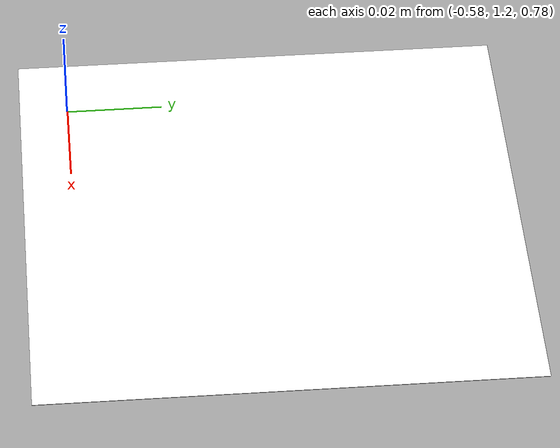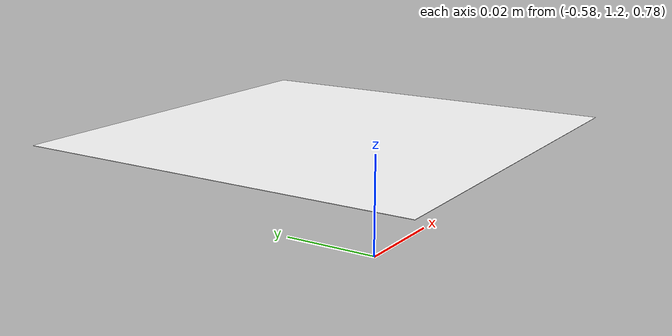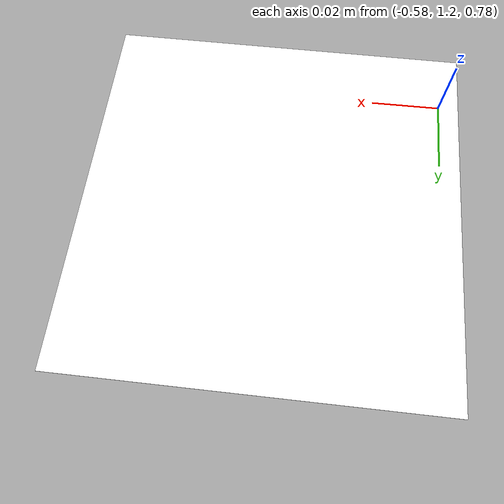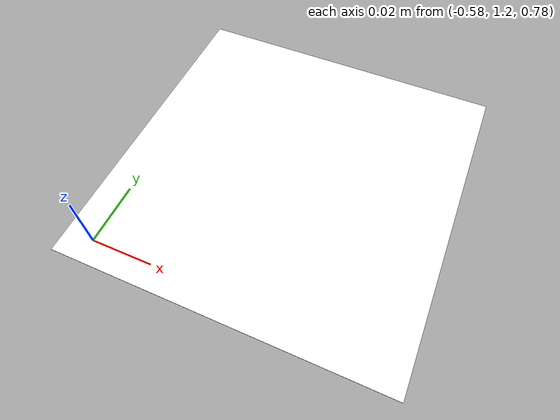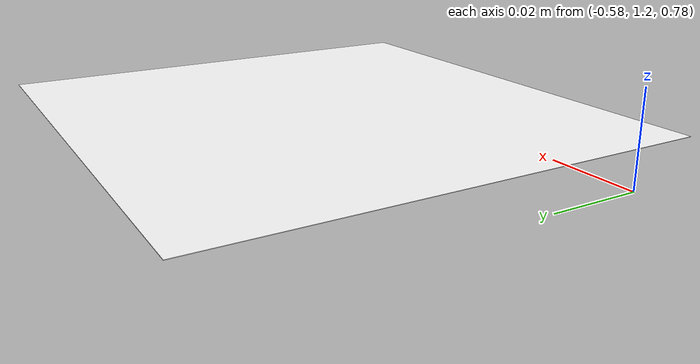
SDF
<?xml version="1.0"?>
<!-- AprilTag 36h11 ID 11 — Modelo para Gazebo Sim -->
<sdf version="1.9">
  <model name="apriltag_11">
    <!-- AprilTag 36h11 ID 11 — Posición calibrada: x=-0.533, y=1.240, z=0.280 m -->
    <pose>-0.533 1.240 0.79 0 0 0</pose>
    <static>true</static>
    <link name="tag_link">
      <visual name="tag_visual">
        <geometry>
          <plane>
            <normal>0 0 1</normal>
            <size>0.10 0.10</size>
          </plane>
        </geometry>
        <material>
          <diffuse>1 1 1 1</diffuse>
          <specular>0 0 0 1</specular>
          <pbr>
            <metal>
              <albedo_map>model://apriltags/textures/tag36_11_00011.png</albedo_map>
              <metalness>0.0</metalness>
              <roughness>1.0</roughness>
            </metal>
          </pbr>
        </material>
      </visual>
    </link>
  </model>
</sdf>
